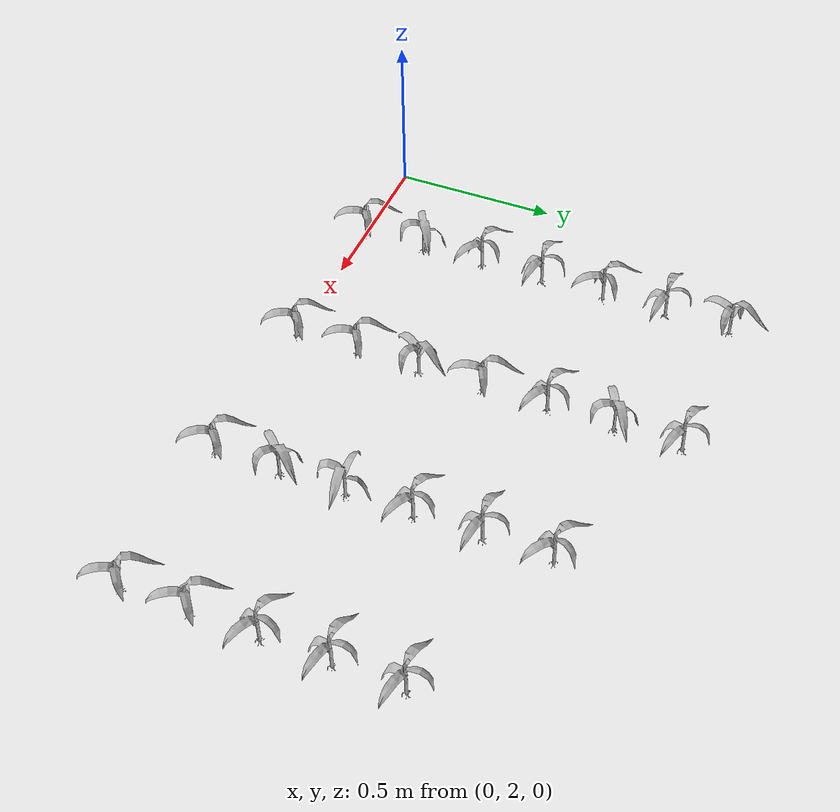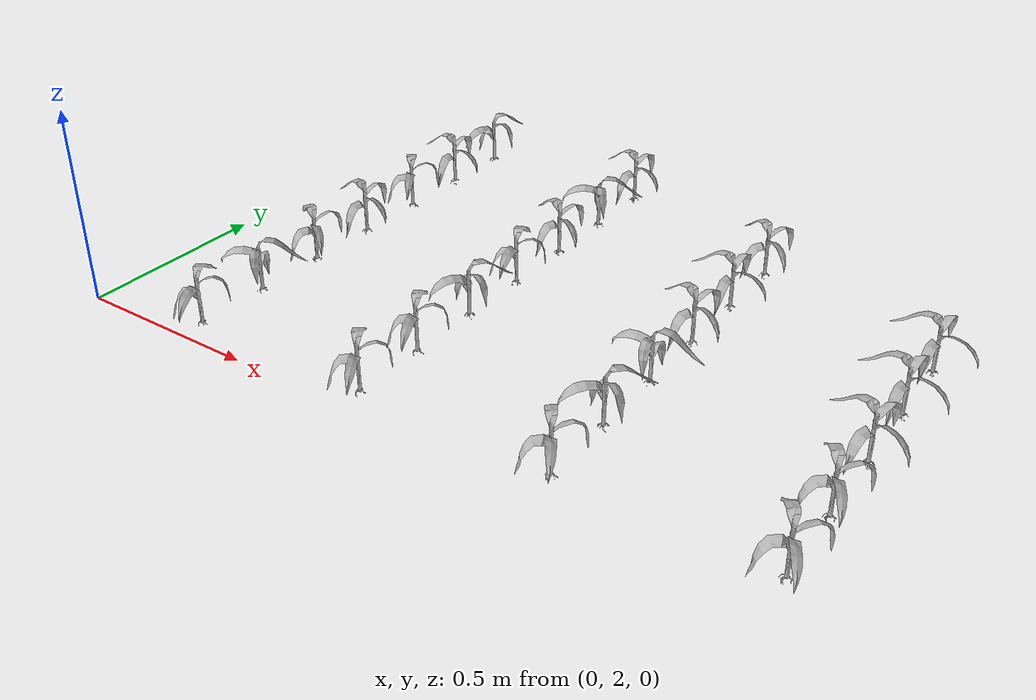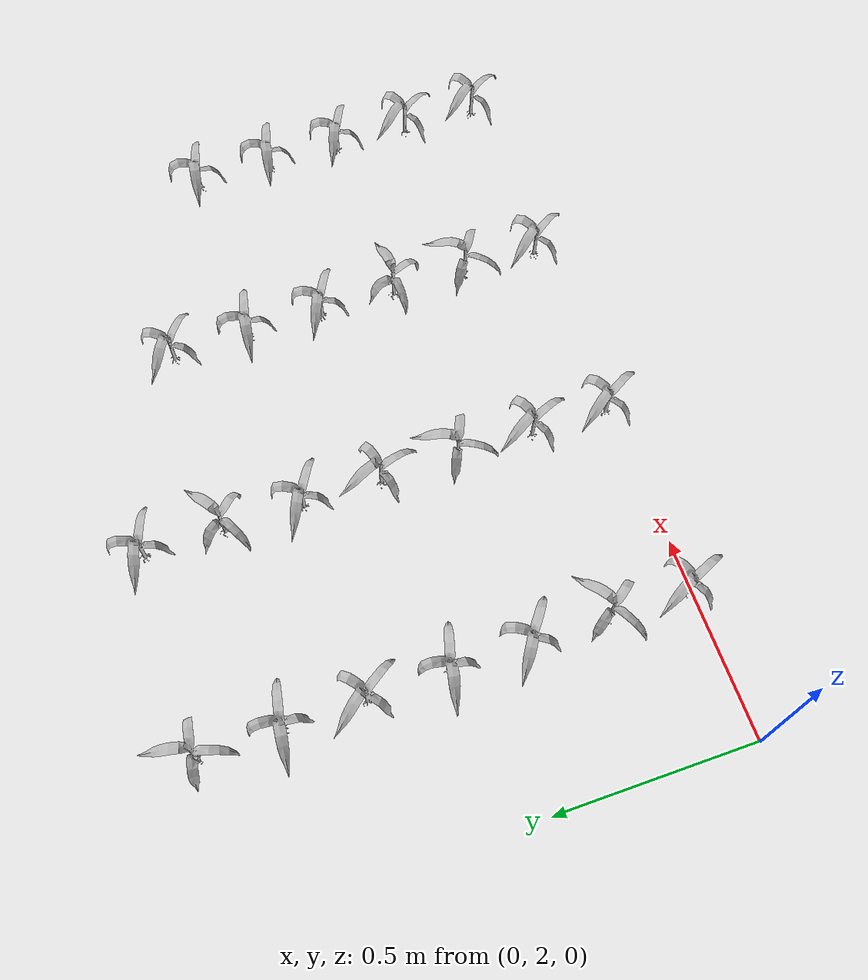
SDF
<sdf version="1.7">
 <world name="default">
  <model name="maize_0.36262630970692733_2.0250000000000004">
   <static>1</static>
   <link name="link">
    <inertial>
     <mass>0.2</mass>
     <inertia>
      <ixx>0.166667</ixx>
      <ixy>0</ixy>
      <ixz>0</ixz>
      <iyy>0.166667</iyy>
      <iyz>0</iyz>
      <izz>0.166667</izz>
     </inertia>
    </inertial>
    <collision name="collision">
     <geometry><mesh><uri>model://corn_3/meshes/corn.dae</uri><scale>0.25 0.25 0.25</scale></mesh></geometry>
     <surface>
      <friction><ode><mu>0</mu><mu2>0</mu2></ode></friction>
      <contact><ode><kp>0</kp><kd>0</kd><max_vel>0</max_vel><min_depth>0.002</min_depth></ode></contact>
     </surface>
    </collision>
    <visual name="visual">
     <geometry><mesh><uri>model://corn_3/meshes/corn.dae</uri><scale>0.25 0.25 0.25</scale></mesh></geometry>
    </visual>
    <velocity_decay><linear>0</linear><angular>0</angular></velocity_decay>
   </link>
   <pose>0.362626 2.025 0.05 0 -0 2.07258</pose>
  </model>
  <model name="maize_0.36262630970692733_2.2200000000000006">
   <static>1</static>
   <link name="link">
    <inertial>
     <mass>0.2</mass>
     <inertia>
      <ixx>0.166667</ixx>
      <ixy>0</ixy>
      <ixz>0</ixz>
      <iyy>0.166667</iyy>
      <iyz>0</iyz>
      <izz>0.166667</izz>
     </inertia>
    </inertial>
    <collision name="collision">
     <geometry><mesh><uri>model://corn_3/meshes/corn.dae</uri><scale>0.25 0.25 0.25</scale></mesh></geometry>
     <surface>
      <friction><ode><mu>0</mu><mu2>0</mu2></ode></friction>
      <contact><ode><kp>0</kp><kd>0</kd><max_vel>0</max_vel><min_depth>0.002</min_depth></ode></contact>
     </surface>
    </collision>
    <visual name="visual">
     <geometry><mesh><uri>model://corn_3/meshes/corn.dae</uri><scale>0.25 0.25 0.25</scale></mesh></geometry>
    </visual>
    <velocity_decay><linear>0</linear><angular>0</angular></velocity_decay>
   </link>
   <pose>0.362626 2.22 0.05 0 -0 0.582355</pose>
  </model>
  <model name="maize_0.36262630970692733_2.415">
   <static>1</static>
   <link name="link">
    <inertial>
     <mass>0.2</mass>
     <inertia>
      <ixx>0.166667</ixx>
      <ixy>0</ixy>
      <ixz>0</ixz>
      <iyy>0.166667</iyy>
      <iyz>0</iyz>
      <izz>0.166667</izz>
     </inertia>
    </inertial>
    <collision name="collision">
     <geometry><mesh><uri>model://corn_3/meshes/corn.dae</uri><scale>0.25 0.25 0.25</scale></mesh></geometry>
     <surface>
      <friction><ode><mu>0</mu><mu2>0</mu2></ode></friction>
      <contact><ode><kp>0</kp><kd>0</kd><max_vel>0</max_vel><min_depth>0.002</min_depth></ode></contact>
     </surface>
    </collision>
    <visual name="visual">
     <geometry><mesh><uri>model://corn_3/meshes/corn.dae</uri><scale>0.25 0.25 0.25</scale></mesh></geometry>
    </visual>
    <velocity_decay><linear>0</linear><angular>0</angular></velocity_decay>
   </link>
   <pose>0.362626 2.415 0.05 0 -0 2.60148</pose>
  </model>
  <model name="maize_0.36262630970692733_2.6100000000000003">
   <static>1</static>
   <link name="link">
    <inertial>
     <mass>0.2</mass>
     <inertia>
      <ixx>0.166667</ixx>
      <ixy>0</ixy>
      <ixz>0</ixz>
      <iyy>0.166667</iyy>
      <iyz>0</iyz>
      <izz>0.166667</izz>
     </inertia>
    </inertial>
    <collision name="collision">
     <geometry><mesh><uri>model://corn_3/meshes/corn.dae</uri><scale>0.25 0.25 0.25</scale></mesh></geometry>
     <surface>
      <friction><ode><mu>0</mu><mu2>0</mu2></ode></friction>
      <contact><ode><kp>0</kp><kd>0</kd><max_vel>0</max_vel><min_depth>0.002</min_depth></ode></contact>
     </surface>
    </collision>
    <visual name="visual">
     <geometry><mesh><uri>model://corn_3/meshes/corn.dae</uri><scale>0.25 0.25 0.25</scale></mesh></geometry>
    </visual>
    <velocity_decay><linear>0</linear><angular>0</angular></velocity_decay>
   </link>
   <pose>0.362626 2.61 0.05 0 -0 2.96552</pose>
  </model>
  <model name="maize_0.36262630970692733_2.8050000000000006">
   <static>1</static>
   <link name="link">
    <inertial>
     <mass>0.2</mass>
     <inertia>
      <ixx>0.166667</ixx>
      <ixy>0</ixy>
      <ixz>0</ixz>
      <iyy>0.166667</iyy>
      <iyz>0</iyz>
      <izz>0.166667</izz>
     </inertia>
    </inertial>
    <collision name="collision">
     <geometry><mesh><uri>model://corn_3/meshes/corn.dae</uri><scale>0.25 0.25 0.25</scale></mesh></geometry>
     <surface>
      <friction><ode><mu>0</mu><mu2>0</mu2></ode></friction>
      <contact><ode><kp>0</kp><kd>0</kd><max_vel>0</max_vel><min_depth>0.002</min_depth></ode></contact>
     </surface>
    </collision>
    <visual name="visual">
     <geometry><mesh><uri>model://corn_3/meshes/corn.dae</uri><scale>0.25 0.25 0.25</scale></mesh></geometry>
    </visual>
    <velocity_decay><linear>0</linear><angular>0</angular></velocity_decay>
   </link>
   <pose>0.362626 2.805 0.05 0 -0 2.24404</pose>
  </model>
  <model name="maize_0.36262630970692733_3.000000000000001">
   <static>1</static>
   <link name="link">
    <inertial>
     <mass>0.2</mass>
     <inertia>
      <ixx>0.166667</ixx>
      <ixy>0</ixy>
      <ixz>0</ixz>
      <iyy>0.166667</iyy>
      <iyz>0</iyz>
      <izz>0.166667</izz>
     </inertia>
    </inertial>
    <collision name="collision">
     <geometry><mesh><uri>model://corn_3/meshes/corn.dae</uri><scale>0.25 0.25 0.25</scale></mesh></geometry>
     <surface>
      <friction><ode><mu>0</mu><mu2>0</mu2></ode></friction>
      <contact><ode><kp>0</kp><kd>0</kd><max_vel>0</max_vel><min_depth>0.002</min_depth></ode></contact>
     </surface>
    </collision>
    <visual name="visual">
     <geometry><mesh><uri>model://corn_3/meshes/corn.dae</uri><scale>0.25 0.25 0.25</scale></mesh></geometry>
    </visual>
    <velocity_decay><linear>0</linear><angular>0</angular></velocity_decay>
   </link>
   <pose>0.362626 3 0.05 0 -0 3.04734</pose>
  </model>
  <model name="maize_0.36262630970692733_3.1950000000000003">
   <static>1</static>
   <link name="link">
    <inertial>
     <mass>0.2</mass>
     <inertia>
      <ixx>0.166667</ixx>
      <ixy>0</ixy>
      <ixz>0</ixz>
      <iyy>0.166667</iyy>
      <iyz>0</iyz>
      <izz>0.166667</izz>
     </inertia>
    </inertial>
    <collision name="collision">
     <geometry><mesh><uri>model://corn_3/meshes/corn.dae</uri><scale>0.25 0.25 0.25</scale></mesh></geometry>
     <surface>
      <friction><ode><mu>0</mu><mu2>0</mu2></ode></friction>
      <contact><ode><kp>0</kp><kd>0</kd><max_vel>0</max_vel><min_depth>0.002</min_depth></ode></contact>
     </surface>
    </collision>
    <visual name="visual">
     <geometry><mesh><uri>model://corn_3/meshes/corn.dae</uri><scale>0.25 0.25 0.25</scale></mesh></geometry>
    </visual>
    <velocity_decay><linear>0</linear><angular>0</angular></velocity_decay>
   </link>
   <pose>0.362626 3.195 0.05 0 -0 1.3357</pose>
  </model>
  <model name="maize_0.8547947739721122_2.0250000000000004">
   <static>1</static>
   <link name="link">
    <inertial>
     <mass>0.2</mass>
     <inertia>
      <ixx>0.166667</ixx>
      <ixy>0</ixy>
      <ixz>0</ixz>
      <iyy>0.166667</iyy>
      <iyz>0</iyz>
      <izz>0.166667</izz>
     </inertia>
    </inertial>
    <collision name="collision">
     <geometry><mesh><uri>model://corn_3/meshes/corn.dae</uri><scale>0.25 0.25 0.25</scale></mesh></geometry>
     <surface>
      <friction><ode><mu>0</mu><mu2>0</mu2></ode></friction>
      <contact><ode><kp>0</kp><kd>0</kd><max_vel>0</max_vel><min_depth>0.002</min_depth></ode></contact>
     </surface>
    </collision>
    <visual name="visual">
     <geometry><mesh><uri>model://corn_3/meshes/corn.dae</uri><scale>0.25 0.25 0.25</scale></mesh></geometry>
    </visual>
    <velocity_decay><linear>0</linear><angular>0</angular></velocity_decay>
   </link>
   <pose>0.854795 2.025 0.05 0 -0 2.18538</pose>
  </model>
  <model name="maize_0.8547947739721122_2.2200000000000006">
   <static>1</static>
   <link name="link">
    <inertial>
     <mass>0.2</mass>
     <inertia>
      <ixx>0.166667</ixx>
      <ixy>0</ixy>
      <ixz>0</ixz>
      <iyy>0.166667</iyy>
      <iyz>0</iyz>
      <izz>0.166667</izz>
     </inertia>
    </inertial>
    <collision name="collision">
     <geometry><mesh><uri>model://corn_3/meshes/corn.dae</uri><scale>0.25 0.25 0.25</scale></mesh></geometry>
     <surface>
      <friction><ode><mu>0</mu><mu2>0</mu2></ode></friction>
      <contact><ode><kp>0</kp><kd>0</kd><max_vel>0</max_vel><min_depth>0.002</min_depth></ode></contact>
     </surface>
    </collision>
    <visual name="visual">
     <geometry><mesh><uri>model://corn_3/meshes/corn.dae</uri><scale>0.25 0.25 0.25</scale></mesh></geometry>
    </visual>
    <velocity_decay><linear>0</linear><angular>0</angular></velocity_decay>
   </link>
   <pose>0.854795 2.22 0.05 0 -0 2.05053</pose>
  </model>
  <model name="maize_0.8547947739721122_2.415">
   <static>1</static>
   <link name="link">
    <inertial>
     <mass>0.2</mass>
     <inertia>
      <ixx>0.166667</ixx>
      <ixy>0</ixy>
      <ixz>0</ixz>
      <iyy>0.166667</iyy>
      <iyz>0</iyz>
      <izz>0.166667</izz>
     </inertia>
    </inertial>
    <collision name="collision">
     <geometry><mesh><uri>model://corn_3/meshes/corn.dae</uri><scale>0.25 0.25 0.25</scale></mesh></geometry>
     <surface>
      <friction><ode><mu>0</mu><mu2>0</mu2></ode></friction>
      <contact><ode><kp>0</kp><kd>0</kd><max_vel>0</max_vel><min_depth>0.002</min_depth></ode></contact>
     </surface>
    </collision>
    <visual name="visual">
     <geometry><mesh><uri>model://corn_3/meshes/corn.dae</uri><scale>0.25 0.25 0.25</scale></mesh></geometry>
    </visual>
    <velocity_decay><linear>0</linear><angular>0</angular></velocity_decay>
   </link>
   <pose>0.854795 2.415 0.05 0 -0 1.12332</pose>
  </model>
  <model name="maize_0.8547947739721122_2.6100000000000003">
   <static>1</static>
   <link name="link">
    <inertial>
     <mass>0.2</mass>
     <inertia>
      <ixx>0.166667</ixx>
      <ixy>0</ixy>
      <ixz>0</ixz>
      <iyy>0.166667</iyy>
      <iyz>0</iyz>
      <izz>0.166667</izz>
     </inertia>
    </inertial>
    <collision name="collision">
     <geometry><mesh><uri>model://corn_3/meshes/corn.dae</uri><scale>0.25 0.25 0.25</scale></mesh></geometry>
     <surface>
      <friction><ode><mu>0</mu><mu2>0</mu2></ode></friction>
      <contact><ode><kp>0</kp><kd>0</kd><max_vel>0</max_vel><min_depth>0.002</min_depth></ode></contact>
     </surface>
    </collision>
    <visual name="visual">
     <geometry><mesh><uri>model://corn_3/meshes/corn.dae</uri><scale>0.25 0.25 0.25</scale></mesh></geometry>
    </visual>
    <velocity_decay><linear>0</linear><angular>0</angular></velocity_decay>
   </link>
   <pose>0.854795 2.61 0.05 0 -0 1.89722</pose>
  </model>
  <model name="maize_0.8547947739721122_2.8050000000000006">
   <static>1</static>
   <link name="link">
    <inertial>
     <mass>0.2</mass>
     <inertia>
      <ixx>0.166667</ixx>
      <ixy>0</ixy>
      <ixz>0</ixz>
      <iyy>0.166667</iyy>
      <iyz>0</iyz>
      <izz>0.166667</izz>
     </inertia>
    </inertial>
    <collision name="collision">
     <geometry><mesh><uri>model://corn_3/meshes/corn.dae</uri><scale>0.25 0.25 0.25</scale></mesh></geometry>
     <surface>
      <friction><ode><mu>0</mu><mu2>0</mu2></ode></friction>
      <contact><ode><kp>0</kp><kd>0</kd><max_vel>0</max_vel><min_depth>0.002</min_depth></ode></contact>
     </surface>
    </collision>
    <visual name="visual">
     <geometry><mesh><uri>model://corn_3/meshes/corn.dae</uri><scale>0.25 0.25 0.25</scale></mesh></geometry>
    </visual>
    <velocity_decay><linear>0</linear><angular>0</angular></velocity_decay>
   </link>
   <pose>0.854795 2.805 0.05 0 -0 2.69366</pose>
  </model>
  <model name="maize_0.8547947739721122_3.000000000000001">
   <static>1</static>
   <link name="link">
    <inertial>
     <mass>0.2</mass>
     <inertia>
      <ixx>0.166667</ixx>
      <ixy>0</ixy>
      <ixz>0</ixz>
      <iyy>0.166667</iyy>
      <iyz>0</iyz>
      <izz>0.166667</izz>
     </inertia>
    </inertial>
    <collision name="collision">
     <geometry><mesh><uri>model://corn_3/meshes/corn.dae</uri><scale>0.25 0.25 0.25</scale></mesh></geometry>
     <surface>
      <friction><ode><mu>0</mu><mu2>0</mu2></ode></friction>
      <contact><ode><kp>0</kp><kd>0</kd><max_vel>0</max_vel><min_depth>0.002</min_depth></ode></contact>
     </surface>
    </collision>
    <visual name="visual">
     <geometry><mesh><uri>model://corn_3/meshes/corn.dae</uri><scale>0.25 0.25 0.25</scale></mesh></geometry>
    </visual>
    <velocity_decay><linear>0</linear><angular>0</angular></velocity_decay>
   </link>
   <pose>0.854795 3 0.05 0 -0 0.590192</pose>
  </model>
  <model name="maize_0.8547947739721122_3.1950000000000003">
   <static>1</static>
   <link name="link">
    <inertial>
     <mass>0.2</mass>
     <inertia>
      <ixx>0.166667</ixx>
      <ixy>0</ixy>
      <ixz>0</ixz>
      <iyy>0.166667</iyy>
      <iyz>0</iyz>
      <izz>0.166667</izz>
     </inertia>
    </inertial>
    <collision name="collision">
     <geometry><mesh><uri>model://corn_3/meshes/corn.dae</uri><scale>0.25 0.25 0.25</scale></mesh></geometry>
     <surface>
      <friction><ode><mu>0</mu><mu2>0</mu2></ode></friction>
      <contact><ode><kp>0</kp><kd>0</kd><max_vel>0</max_vel><min_depth>0.002</min_depth></ode></contact>
     </surface>
    </collision>
    <visual name="visual">
     <geometry><mesh><uri>model://corn_3/meshes/corn.dae</uri><scale>0.25 0.25 0.25</scale></mesh></geometry>
    </visual>
    <velocity_decay><linear>0</linear><angular>0</angular></velocity_decay>
   </link>
   <pose>0.854795 3.195 0.05 0 -0 2.86862</pose>
  </model>
  <model name="maize_1.346222194063599_2.0250000000000004">
   <static>1</static>
   <link name="link">
    <inertial>
     <mass>0.2</mass>
     <inertia>
      <ixx>0.166667</ixx>
      <ixy>0</ixy>
      <ixz>0</ixz>
      <iyy>0.166667</iyy>
      <iyz>0</iyz>
      <izz>0.166667</izz>
     </inertia>
    </inertial>
    <collision name="collision">
     <geometry><mesh><uri>model://corn_3/meshes/corn.dae</uri><scale>0.25 0.25 0.25</scale></mesh></geometry>
     <surface>
      <friction><ode><mu>0</mu><mu2>0</mu2></ode></friction>
      <contact><ode><kp>0</kp><kd>0</kd><max_vel>0</max_vel><min_depth>0.002</min_depth></ode></contact>
     </surface>
    </collision>
    <visual name="visual">
     <geometry><mesh><uri>model://corn_3/meshes/corn.dae</uri><scale>0.25 0.25 0.25</scale></mesh></geometry>
    </visual>
    <velocity_decay><linear>0</linear><angular>0</angular></velocity_decay>
   </link>
   <pose>1.34622 2.025 0.05 0 -0 2.22497</pose>
  </model>
  <model name="maize_1.346222194063599_2.2200000000000006">
   <static>1</static>
   <link name="link">
    <inertial>
     <mass>0.2</mass>
     <inertia>
      <ixx>0.166667</ixx>
      <ixy>0</ixy>
      <ixz>0</ixz>
      <iyy>0.166667</iyy>
      <iyz>0</iyz>
      <izz>0.166667</izz>
     </inertia>
    </inertial>
    <collision name="collision">
     <geometry><mesh><uri>model://corn_3/meshes/corn.dae</uri><scale>0.25 0.25 0.25</scale></mesh></geometry>
     <surface>
      <friction><ode><mu>0</mu><mu2>0</mu2></ode></friction>
      <contact><ode><kp>0</kp><kd>0</kd><max_vel>0</max_vel><min_depth>0.002</min_depth></ode></contact>
     </surface>
    </collision>
    <visual name="visual">
     <geometry><mesh><uri>model://corn_3/meshes/corn.dae</uri><scale>0.25 0.25 0.25</scale></mesh></geometry>
    </visual>
    <velocity_decay><linear>0</linear><angular>0</angular></velocity_decay>
   </link>
   <pose>1.34622 2.22 0.05 0 -0 0.933836</pose>
  </model>
  <model name="maize_1.346222194063599_2.415">
   <static>1</static>
   <link name="link">
    <inertial>
     <mass>0.2</mass>
     <inertia>
      <ixx>0.166667</ixx>
      <ixy>0</ixy>
      <ixz>0</ixz>
      <iyy>0.166667</iyy>
      <iyz>0</iyz>
      <izz>0.166667</izz>
     </inertia>
    </inertial>
    <collision name="collision">
     <geometry><mesh><uri>model://corn_3/meshes/corn.dae</uri><scale>0.25 0.25 0.25</scale></mesh></geometry>
     <surface>
      <friction><ode><mu>0</mu><mu2>0</mu2></ode></friction>
      <contact><ode><kp>0</kp><kd>0</kd><max_vel>0</max_vel><min_depth>0.002</min_depth></ode></contact>
     </surface>
    </collision>
    <visual name="visual">
     <geometry><mesh><uri>model://corn_3/meshes/corn.dae</uri><scale>0.25 0.25 0.25</scale></mesh></geometry>
    </visual>
    <velocity_decay><linear>0</linear><angular>0</angular></velocity_decay>
   </link>
   <pose>1.34622 2.415 0.05 0 -0 0.127895</pose>
  </model>
  <model name="maize_1.346222194063599_2.6100000000000003">
   <static>1</static>
   <link name="link">
    <inertial>
     <mass>0.2</mass>
     <inertia>
      <ixx>0.166667</ixx>
      <ixy>0</ixy>
      <ixz>0</ixz>
      <iyy>0.166667</iyy>
      <iyz>0</iyz>
      <izz>0.166667</izz>
     </inertia>
    </inertial>
    <collision name="collision">
     <geometry><mesh><uri>model://corn_3/meshes/corn.dae</uri><scale>0.25 0.25 0.25</scale></mesh></geometry>
     <surface>
      <friction><ode><mu>0</mu><mu2>0</mu2></ode></friction>
      <contact><ode><kp>0</kp><kd>0</kd><max_vel>0</max_vel><min_depth>0.002</min_depth></ode></contact>
     </surface>
    </collision>
    <visual name="visual">
     <geometry><mesh><uri>model://corn_3/meshes/corn.dae</uri><scale>0.25 0.25 0.25</scale></mesh></geometry>
    </visual>
    <velocity_decay><linear>0</linear><angular>0</angular></velocity_decay>
   </link>
   <pose>1.34622 2.61 0.05 0 -0 2.73513</pose>
  </model>
  <model name="maize_1.346222194063599_2.8050000000000006">
   <static>1</static>
   <link name="link">
    <inertial>
     <mass>0.2</mass>
     <inertia>
      <ixx>0.166667</ixx>
      <ixy>0</ixy>
      <ixz>0</ixz>
      <iyy>0.166667</iyy>
      <iyz>0</iyz>
      <izz>0.166667</izz>
     </inertia>
    </inertial>
    <collision name="collision">
     <geometry><mesh><uri>model://corn_3/meshes/corn.dae</uri><scale>0.25 0.25 0.25</scale></mesh></geometry>
     <surface>
      <friction><ode><mu>0</mu><mu2>0</mu2></ode></friction>
      <contact><ode><kp>0</kp><kd>0</kd><max_vel>0</max_vel><min_depth>0.002</min_depth></ode></contact>
     </surface>
    </collision>
    <visual name="visual">
     <geometry><mesh><uri>model://corn_3/meshes/corn.dae</uri><scale>0.25 0.25 0.25</scale></mesh></geometry>
    </visual>
    <velocity_decay><linear>0</linear><angular>0</angular></velocity_decay>
   </link>
   <pose>1.34622 2.805 0.05 0 -0 3.03242</pose>
  </model>
  <model name="maize_1.346222194063599_3.000000000000001">
   <static>1</static>
   <link name="link">
    <inertial>
     <mass>0.2</mass>
     <inertia>
      <ixx>0.166667</ixx>
      <ixy>0</ixy>
      <ixz>0</ixz>
      <iyy>0.166667</iyy>
      <iyz>0</iyz>
      <izz>0.166667</izz>
     </inertia>
    </inertial>
    <collision name="collision">
     <geometry><mesh><uri>model://corn_3/meshes/corn.dae</uri><scale>0.25 0.25 0.25</scale></mesh></geometry>
     <surface>
      <friction><ode><mu>0</mu><mu2>0</mu2></ode></friction>
      <contact><ode><kp>0</kp><kd>0</kd><max_vel>0</max_vel><min_depth>0.002</min_depth></ode></contact>
     </surface>
    </collision>
    <visual name="visual">
     <geometry><mesh><uri>model://corn_3/meshes/corn.dae</uri><scale>0.25 0.25 0.25</scale></mesh></geometry>
    </visual>
    <velocity_decay><linear>0</linear><angular>0</angular></velocity_decay>
   </link>
   <pose>1.34622 3 0.05 0 -0 2.54833</pose>
  </model>
  <model name="maize_1.8369094047028893_2.0250000000000004">
   <static>1</static>
   <link name="link">
    <inertial>
     <mass>0.2</mass>
     <inertia>
      <ixx>0.166667</ixx>
      <ixy>0</ixy>
      <ixz>0</ixz>
      <iyy>0.166667</iyy>
      <iyz>0</iyz>
      <izz>0.166667</izz>
     </inertia>
    </inertial>
    <collision name="collision">
     <geometry><mesh><uri>model://corn_3/meshes/corn.dae</uri><scale>0.25 0.25 0.25</scale></mesh></geometry>
     <surface>
      <friction><ode><mu>0</mu><mu2>0</mu2></ode></friction>
      <contact><ode><kp>0</kp><kd>0</kd><max_vel>0</max_vel><min_depth>0.002</min_depth></ode></contact>
     </surface>
    </collision>
    <visual name="visual">
     <geometry><mesh><uri>model://corn_3/meshes/corn.dae</uri><scale>0.25 0.25 0.25</scale></mesh></geometry>
    </visual>
    <velocity_decay><linear>0</linear><angular>0</angular></velocity_decay>
   </link>
   <pose>1.83691 2.025 0.05 0 -0 2.16684</pose>
  </model>
  <model name="maize_1.8369094047028893_2.2200000000000006">
   <static>1</static>
   <link name="link">
    <inertial>
     <mass>0.2</mass>
     <inertia>
      <ixx>0.166667</ixx>
      <ixy>0</ixy>
      <ixz>0</ixz>
      <iyy>0.166667</iyy>
      <iyz>0</iyz>
      <izz>0.166667</izz>
     </inertia>
    </inertial>
    <collision name="collision">
     <geometry><mesh><uri>model://corn_3/meshes/corn.dae</uri><scale>0.25 0.25 0.25</scale></mesh></geometry>
     <surface>
      <friction><ode><mu>0</mu><mu2>0</mu2></ode></friction>
      <contact><ode><kp>0</kp><kd>0</kd><max_vel>0</max_vel><min_depth>0.002</min_depth></ode></contact>
     </surface>
    </collision>
    <visual name="visual">
     <geometry><mesh><uri>model://corn_3/meshes/corn.dae</uri><scale>0.25 0.25 0.25</scale></mesh></geometry>
    </visual>
    <velocity_decay><linear>0</linear><angular>0</angular></velocity_decay>
   </link>
   <pose>1.83691 2.22 0.05 0 -0 2.16619</pose>
  </model>
  <model name="maize_1.8369094047028893_2.415">
   <static>1</static>
   <link name="link">
    <inertial>
     <mass>0.2</mass>
     <inertia>
      <ixx>0.166667</ixx>
      <ixy>0</ixy>
      <ixz>0</ixz>
      <iyy>0.166667</iyy>
      <iyz>0</iyz>
      <izz>0.166667</izz>
     </inertia>
    </inertial>
    <collision name="collision">
     <geometry><mesh><uri>model://corn_3/meshes/corn.dae</uri><scale>0.25 0.25 0.25</scale></mesh></geometry>
     <surface>
      <friction><ode><mu>0</mu><mu2>0</mu2></ode></friction>
      <contact><ode><kp>0</kp><kd>0</kd><max_vel>0</max_vel><min_depth>0.002</min_depth></ode></contact>
     </surface>
    </collision>
    <visual name="visual">
     <geometry><mesh><uri>model://corn_3/meshes/corn.dae</uri><scale>0.25 0.25 0.25</scale></mesh></geometry>
    </visual>
    <velocity_decay><linear>0</linear><angular>0</angular></velocity_decay>
   </link>
   <pose>1.83691 2.415 0.05 0 -0 2.77455</pose>
  </model>
  <model name="maize_1.8369094047028893_2.6100000000000003">
   <static>1</static>
   <link name="link">
    <inertial>
     <mass>0.2</mass>
     <inertia>
      <ixx>0.166667</ixx>
      <ixy>0</ixy>
      <ixz>0</ixz>
      <iyy>0.166667</iyy>
      <iyz>0</iyz>
      <izz>0.166667</izz>
     </inertia>
    </inertial>
    <collision name="collision">
     <geometry><mesh><uri>model://corn_3/meshes/corn.dae</uri><scale>0.25 0.25 0.25</scale></mesh></geometry>
     <surface>
      <friction><ode><mu>0</mu><mu2>0</mu2></ode></friction>
      <contact><ode><kp>0</kp><kd>0</kd><max_vel>0</max_vel><min_depth>0.002</min_depth></ode></contact>
     </surface>
    </collision>
    <visual name="visual">
     <geometry><mesh><uri>model://corn_3/meshes/corn.dae</uri><scale>0.25 0.25 0.25</scale></mesh></geometry>
    </visual>
    <velocity_decay><linear>0</linear><angular>0</angular></velocity_decay>
   </link>
   <pose>1.83691 2.61 0.05 0 -0 2.97601</pose>
  </model>
  <model name="maize_1.8369094047028893_2.8050000000000006">
   <static>1</static>
   <link name="link">
    <inertial>
     <mass>0.2</mass>
     <inertia>
      <ixx>0.166667</ixx>
      <ixy>0</ixy>
      <ixz>0</ixz>
      <iyy>0.166667</iyy>
      <iyz>0</iyz>
      <izz>0.166667</izz>
     </inertia>
    </inertial>
    <collision name="collision">
     <geometry><mesh><uri>model://corn_3/meshes/corn.dae</uri><scale>0.25 0.25 0.25</scale></mesh></geometry>
     <surface>
      <friction><ode><mu>0</mu><mu2>0</mu2></ode></friction>
      <contact><ode><kp>0</kp><kd>0</kd><max_vel>0</max_vel><min_depth>0.002</min_depth></ode></contact>
     </surface>
    </collision>
    <visual name="visual">
     <geometry><mesh><uri>model://corn_3/meshes/corn.dae</uri><scale>0.25 0.25 0.25</scale></mesh></geometry>
    </visual>
    <velocity_decay><linear>0</linear><angular>0</angular></velocity_decay>
   </link>
   <pose>1.83691 2.805 0.05 0 -0 2.98844</pose>
  </model>
 </world>
</sdf>
